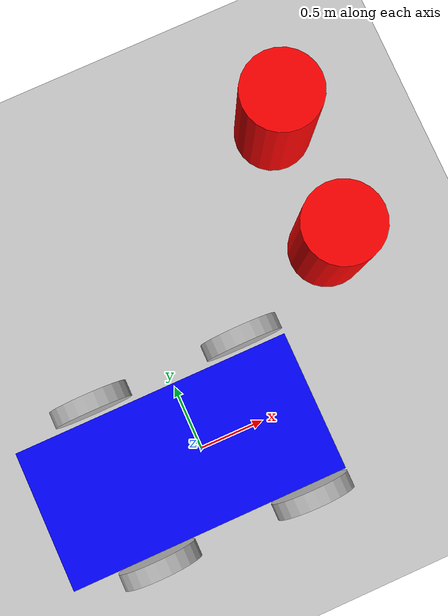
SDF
<?xml version="1.0" ?>
<sdf version="1.8">
    <world name="lab1_world">
        <physics name="1ms" type="ignored">
            <max_step_size>0.001</max_step_size>
            <real_time_factor>1.0</real_time_factor>
        </physics>

        <plugin filename="gz-sim-physics-system" name="gz::sim::systems::Physics"/>
        <plugin filename="gz-sim-user-commands-system" name="gz::sim::systems::UserCommands"/>
        <plugin filename="gz-sim-scene-broadcaster-system" name="gz::sim::systems::SceneBroadcaster"/>
        <plugin filename="gz-sim-sensors-system" name="gz::sim::systems::Sensors">
            <render_engine>ogre2</render_engine>
        </plugin>

        <light type="directional" name="sun">
            <cast_shadows>true</cast_shadows>
            <pose>0 0 10 0 0 0</pose>
            <diffuse>0.8 0.8 0.8 1</diffuse>
            <specular>0.2 0.2 0.2 1</specular>
            <direction>-0.5 0.1 -0.9</direction>
        </light>

        <model name="ground_plane">
            <static>true</static>
            <link name="link">
                <collision name="collision">
                    <geometry><plane><normal>0 0 1</normal><size>100 100</size></plane></geometry>
                </collision>
                <visual name="visual">
                    <geometry><plane><normal>0 0 1</normal><size>100 100</size></plane></geometry>
                    <material><ambient>0.8 0.8 0.8 1</ambient><diffuse>0.8 0.8 0.8 1</diffuse></material>
                </visual>
            </link>
        </model>

        <model name='vehicle_blue'>
            <pose>0 0 0.325 0 0 0</pose>
            <link name='chassis'>
                <pose>-0.15 0 0.175 0 0 0</pose>
                <inertial>
                    <mass>1.14395</mass>
                    <inertia>
                        <ixx>0.126</ixx><ixy>0</ixy><ixz>0</ixz>
                        <iyy>0.416</iyy><iyz>0</iyz>
                        <izz>0.481</izz>
                    </inertia>
                </inertial>
                <visual name='visual'>
                    <geometry><box><size>2.0 1.0 0.5</size></box></geometry>
                    <material><ambient>0.0 0.0 1.0 1</ambient><diffuse>0.0 0.0 1.0 1</diffuse></material>
                </visual>
                <collision name='collision'>
                    <geometry><box><size>2.0 1.0 0.5</size></box></geometry>
                </collision>
            </link>

            <link name='left_wheel_front'>
                <pose>0.6 0.625 -0.025 -1.5707 0 0</pose>
                <collision name='collision'>
                    <geometry><cylinder><radius>0.3</radius><length>0.125</length></cylinder></geometry>
                    <surface><friction><ode><mu>1.0</mu><mu2>1.0</mu2></ode></friction></surface>
                </collision>
                <visual name='visual'><geometry><cylinder><radius>0.3</radius><length>0.125</length></cylinder></geometry></visual>
            </link>

            <link name='left_wheel_rear'>
                <pose>-0.6 0.625 -0.025 -1.5707 0 0</pose>
                <collision name='collision'>
                    <geometry><cylinder><radius>0.3</radius><length>0.125</length></cylinder></geometry>
                    <surface><friction><ode><mu>1.0</mu><mu2>1.0</mu2></ode></friction></surface>
                </collision>
                <visual name='visual'><geometry><cylinder><radius>0.3</radius><length>0.125</length></cylinder></geometry></visual>
            </link>

            <link name='right_wheel_front'>
                <pose>0.6 -0.625 -0.025 -1.5707 0 0</pose>
                <collision name='collision'>
                    <geometry><cylinder><radius>0.3</radius><length>0.125</length></cylinder></geometry>
                    <surface><friction><ode><mu>1.0</mu><mu2>1.0</mu2></ode></friction></surface>
                </collision>
                <visual name='visual'><geometry><cylinder><radius>0.3</radius><length>0.125</length></cylinder></geometry></visual>
            </link>

            <link name='right_wheel_rear'>
                <pose>-0.6 -0.625 -0.025 -1.5707 0 0</pose>
                <collision name='collision'>
                    <geometry><cylinder><radius>0.3</radius><length>0.125</length></cylinder></geometry>
                    <surface><friction><ode><mu>1.0</mu><mu2>1.0</mu2></ode></friction></surface>
                </collision>
                <visual name='visual'><geometry><cylinder><radius>0.3</radius><length>0.125</length></cylinder></geometry></visual>
            </link>

            <joint name='left_wheel_front_joint' type='revolute'><parent>chassis</parent><child>left_wheel_front</child><axis><xyz>0 0 1</xyz></axis></joint>
            <joint name='left_wheel_rear_joint' type='revolute'><parent>chassis</parent><child>left_wheel_rear</child><axis><xyz>0 0 1</xyz></axis></joint>
            <joint name='right_wheel_front_joint' type='revolute'><parent>chassis</parent><child>right_wheel_front</child><axis><xyz>0 0 1</xyz></axis></joint>
            <joint name='right_wheel_rear_joint' type='revolute'><parent>chassis</parent><child>right_wheel_rear</child><axis><xyz>0 0 1</xyz></axis></joint>

            <plugin filename="gz-sim-diff-drive-system" name="gz::sim::systems::DiffDrive">
                <left_joint>left_wheel_front_joint</left_joint>
                <left_joint>left_wheel_rear_joint</left_joint>
                <right_joint>right_wheel_front_joint</right_joint>
                <right_joint>right_wheel_rear_joint</right_joint>
                <wheel_separation>1.25</wheel_separation>
                <wheel_radius>0.3</wheel_radius>
                <odom_publish_frequency>20</odom_publish_frequency>
                <topic>cmd_vel</topic>
            </plugin>
        </model>
        <model name='obstacle_1'>
      <static>true</static>
      <pose>1.5 1.0 0.5 0 0 0</pose>
      <link name='link'>
        <collision name='collision'><geometry><cylinder><radius>0.3</radius><length>1.0</length></cylinder></geometry></collision>
        <visual name='visual'>
          <geometry><cylinder><radius>0.3</radius><length>1.0</length></cylinder></geometry>
          <material><ambient>1 0 0 1</ambient></material>
        </visual>
      </link>
    </model>

    <model name='obstacle_2'>
      <static>true</static>
      <pose>1.5 2.0 0.5 0 0 0</pose>
      <link name='link'>
        <collision name='collision'><geometry><cylinder><radius>0.3</radius><length>1.0</length></cylinder></geometry></collision>
        <visual name='visual'>
          <geometry><cylinder><radius>0.3</radius><length>1.0</length></cylinder></geometry>
          <material><ambient>1 0 0 1</ambient></material>
        </visual>
      </link>
    </model>
    </world>
</sdf>
